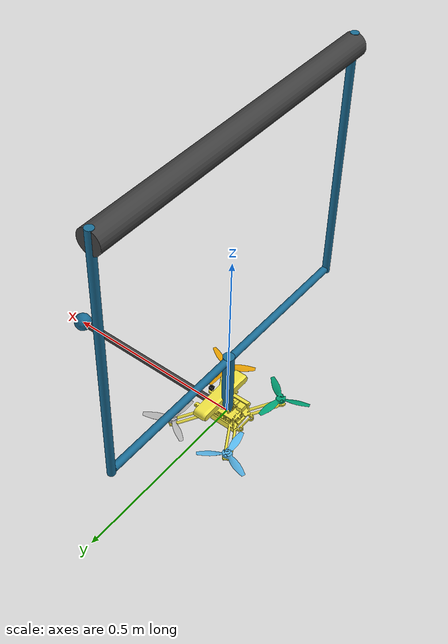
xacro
<?xml version="1.0"?>

<robot name="marvin" xmlns:xacro="http://www.ros.org/wiki/xacro">

    <!-- PROPERTIES -->

    <xacro:property name="M_PI" value="3.1415926535897931"/>

    <xacro:arg name="sensor_update_rate" default="25.0"/>
    <xacro:arg name="controller_update_rate" default="50.0"/>
	<xacro:property name="sensor_update_rate" value="$(arg sensor_update_rate)"/>
	<xacro:property name="controller_update_rate" value="$(arg controller_update_rate)"/>

    <!-- MATERIALS -->

    <material name="DarkGrey">
        <color rgba="0.25 0.25 0.25 1.0"/>
    </material>
    <material name="OA">
        <color rgba="0.101960784 0.42745098 0.588235294 1.0"/>
    </material>

    <!-- PLUGINS -->

	<!-- Cameras -->
    <xacro:include filename="$(find wai_marvin_gazebo)/descriptions/generic_camera.xacro"/>
    <xacro:generic_camera name="camera_front" parent="link_base" update_rate="${sensor_update_rate}" res_x="960" res_y="720" image_format="R8G8B8" hfov="${90*M_PI/180}">
      <origin xyz="0.05 0.0 0.05" rpy="0.0 0.0 0.0"/>
    </xacro:generic_camera><!-- P=0.261791667 Pitch with 15deg -->

	<!-- Gazebo sensor plugins -->
	<gazebo>
		<plugin name="gazebo_ros_control" filename="libgazebo_ros_control.so">
		</plugin>

		<plugin name="quadrotor_imu_sim" filename="libhector_gazebo_ros_imu.so">
		    <alwaysOn>true</alwaysOn>
		    <updateRate>${sensor_update_rate}</updateRate>
		    <bodyName>marvin::link_base</bodyName>
		    <frameId>marvin/link_base</frameId>
		    <topicName>imu</topicName>
            <xyzOffset>0.0 0.0 0.0</xyzOffset>
            <rpyOffset>0.0 0.0 0.0</rpyOffset>
		    <gaussianNoise>0.05</gaussianNoise>
		    <accelDrift>0.001 0.001 0.001</accelDrift>
		</plugin>

		<plugin name="quadrotor_groundtruth_sim" filename="libgazebo_ros_p3d.so">
		    <!-- Takes a BODY NAME body::link and publishes an ODOM-Topic only, parent frame is world -->
		    <!-- COMBINE WITH static_transform_publisher AND ground_truth_to_tf IN THE GAZEBO_SPAWN.launch FILE-->
			<alwaysOn>true</alwaysOn>
			<updateRate>${sensor_update_rate}</updateRate>
			<bodyName>marvin::link_base</bodyName>
			<topicName>odom</topicName>
			<gaussianNoise>0.0</gaussianNoise>
			<frameName>world</frameName>
		</plugin>
	</gazebo>

	<!-- Gazebo controller plugins -->
	<gazebo>
        <plugin name="quadrotor_simple_controller" filename="libhector_gazebo_quadrotor_simple_controller.so">
            <topicName>cmd_vel</topicName>
            <imuTopic>imu</imuTopic>
            <stateTopic>odom</stateTopic>
            <landingtakeoffSpeed>0.125</landingtakeoffSpeed>
            <landingtakeoffHeight>0.5</landingtakeoffHeight>
            <maxForce>30.0</maxForce>
            <bodyName>marvin::link_base</bodyName>
            <rollpitchProportionalGain>10.0</rollpitchProportionalGain>
            <rollpitchDifferentialGain>5.0</rollpitchDifferentialGain>
            <rollpitchIntegralGain>0.0</rollpitchIntegralGain>
            <rollpitchLimit>0.5</rollpitchLimit>
            <yawProportionalGain>1.0</yawProportionalGain>
            <yawDifferentialGain>1.0</yawDifferentialGain>
            <yawIntegralGain>0.0</yawIntegralGain>
            <yawLimit>3.1415</yawLimit>
            <velocityXYProportionalGain>7.5</velocityXYProportionalGain>
            <velocityXYDifferentialGain>2.0</velocityXYDifferentialGain>
            <velocityXYIntegralGain>0.0</velocityXYIntegralGain>
            <velocityXYLimit>2.0</velocityXYLimit>
            <velocityZProportionalGain>5.0</velocityZProportionalGain>
            <velocityZDifferentialGain>1.0</velocityZDifferentialGain>
            <velocityZIntegralGain>0.0</velocityZIntegralGain>
            <velocityZLimit>0.5</velocityZLimit>
        </plugin>
    </gazebo>

	<!-- === LINKS === -->

	<link name="link_base">
        <pose>0.0 0.0 0.0 0.0 0.0 0.0</pose>
		<visual>
			<geometry>
			<cylinder length="0.2" radius="0.015"/>
			</geometry>
			<origin xyz="0.0 0.0 0.1" rpy="0.0 0.0 0.0"/>
            <material name="OA"/>
		</visual>
        <visual>
			<geometry>
			<cylinder length="0.825" radius="0.01"/>
			</geometry>
			<origin xyz="0.0 0.0 0.19" rpy="1.570796327 0.0 0.0"/>
            <material name="OA"/>
		</visual>
        <visual>
			<geometry>
			<cylinder length="0.7" radius="0.01"/>
			</geometry>
			<origin xyz="0.0 0.42 0.53" rpy="0.0 0.0 0.0"/>
            <material name="OA"/>
		</visual>
        <visual>
			<geometry>
			<cylinder length="0.7" radius="0.01"/>
			</geometry>
			<origin xyz="0.0 -0.42 0.53" rpy="0.0 0.0 0.0"/>
            <material name="OA"/>
		</visual>
        <visual>
			<geometry>
			<cylinder length="0.85" radius="0.03"/>
			</geometry>
			<origin xyz="0.0 0.0 0.85" rpy="1.570796327 0.0 0.0"/>
            <material name="DarkGrey"/>
		</visual>
		<inertial>
			<mass value="0.5"/>
			<origin xyz="0.0 0.0 0.0" rpy="0.0 0.0 0.0"/>
			<inertia ixx="1.0" ixy="0.0" ixz="0.0" iyy="1.0" iyz="0.0" izz="1.0"/>
		</inertial>
	</link>

    <link name="link_marvin_body">
		<visual>
			<origin xyz="0.0 0.0 -0.01" rpy="0.0 0.0 0.0"/>
			<geometry>
				<mesh filename="package://wai_marvin_gazebo/resources/marvin/link_marvin_body.dae"/>
			</geometry>
		</visual>
		<inertial>
			<mass value="0.5"/>
			<origin xyz="0.0 0.0 0.0" rpy="0.0 0.0 0.0"/>
			<inertia ixx="1.0" ixy="0.0" ixz="0.0" iyy="1.0" iyz="0.0" izz="1.0"/>
		</inertial>
		<collision>
			<origin xyz="0.0 0.0 0.0" rpy="0.0 0.0 0.0"/>
			<geometry>
                <box size="0.25 0.25 0.1"/>
			</geometry>
		</collision>
    </link>
    <link name="link_marvin_hook_roll">
		<inertial>
			<mass value="0.001"/>
			<origin xyz="0.0 0.0 0.0" rpy="0.0 0.0 0.0"/>
			<inertia ixx="0.000001" ixy="0.0" ixz="0.0" iyy="0.000001" iyz="0.0" izz="0.000001"/>
		</inertial>
    </link>
    <link name="link_marvin_hook_pitch">
		<inertial>
			<mass value="0.001"/>
			<origin xyz="0.0 0.0 0.0" rpy="0.0 0.0 0.0"/>
			<inertia ixx="0.000001" ixy="0.0" ixz="0.0" iyy="0.000001" iyz="0.0" izz="0.000001"/>
		</inertial>
    </link>
    <link name="link_marvin_hook_gripper">
		<visual>
			<origin xyz="-0.25 0.0 0.0" rpy="0.0 1.570796327 0.0"/>
			<geometry>
				<cylinder length="0.5" radius="0.01"/>
			</geometry>
            <material name="DarkGrey"/>
		</visual>
		<visual>
			<origin xyz="0.0 0.0 0.0" rpy="0.0 0.0 0.0"/>
			<geometry>
				<sphere radius="0.025"/>
			</geometry>
            <material name="OA"/>
		</visual>
		<inertial>
			<mass value="0.01"/>
			<origin xyz="0.0 0.0 0.0" rpy="0.0 0.0 0.0"/>
			<inertia ixx="0.0000025" ixy="0.0" ixz="0.0" iyy="0.0000025" iyz="0.0" izz="0.0000025"/>
		</inertial>
    </link>

    <!-- FRONT -->
    <link name="link_marvin_rotor_front_left">
	    <inertial>
	      <mass value="0.01"/>
	      <origin xyz="0.0 0.0 0.0" rpy="0.0 0.0 0.0"/>
	      <inertia ixx="0.000025" ixy="0.0" ixz="0.0" iyx="0.0" iyy="0.000025" iyz="0.0" izx="0.0" izy="0.0" izz="0.00005"/>
	    </inertial>
	    <visual name="link_marvin_rotor_front_left_visual">
	      <origin xyz="0.0 0.0 0.0" rpy="0.0 0.0 0.0"/>
	      <geometry>
		    <mesh filename="package://wai_marvin_gazebo/resources/marvin/link_marvin_rotor_front_left.dae"/>
	      </geometry>
	    </visual>
    </link>
    <link name="link_marvin_rotor_front_right">
	    <inertial>
	      <mass value="0.01"/>
	      <origin xyz="0.0 0.0 0.0" rpy="0.0 0.0 0.0"/>
	      <inertia ixx="0.000025" ixy="0.0" ixz="0.0" iyx="0.0" iyy="0.000025" iyz="0.0" izx="0.0" izy="0.0" izz="0.00005"/>
	    </inertial>
	    <visual name="link_marvin_rotor_front_right_visual">
	      <origin xyz="0.0 0.0 0.0" rpy="0.0 0.0 0.0"/>
	      <geometry>
		    <mesh filename="package://wai_marvin_gazebo/resources/marvin/link_marvin_rotor_front_right.dae"/>
	      </geometry>
	    </visual>
    </link>

    <!-- BACK -->
    <link name="link_marvin_rotor_rear_left">
	    <inertial>
	      <mass value="0.01"/>
	      <origin xyz="0.0 0.0 0.0" rpy="0.0 0.0 0.0"/>
	      <inertia ixx="0.000025" ixy="0.0" ixz="0.0" iyx="0.0" iyy="0.000025" iyz="0.0" izx="0.0" izy="0.0" izz="0.00005"/>
	    </inertial>
	    <visual name="link_marvin_rotor_rear_left_visual">
	      <origin xyz="0.0 0.0 0.0" rpy="0.0 0.0 0.0"/>
	      <geometry>
		    <mesh filename="package://wai_marvin_gazebo/resources/marvin/link_marvin_rotor_rear_left.dae"/>
	      </geometry>
	    </visual>
    </link>

    <link name="link_marvin_rotor_rear_right">
	    <inertial>
	      <mass value="0.01"/>
	      <origin xyz="0.0 0.0 0.0" rpy="0.0 0.0 0.0"/>
	      <inertia ixx="0.000025" ixy="0.0" ixz="0.0" iyx="0.0" iyy="0.000025" iyz="0.0" izx="0.0" izy="0.0" izz="0.00005"/>
	    </inertial>
	    <visual name="link_marvin_rotor_rear_right_visual">
	      <origin xyz="0.0 0.0 0.0" rpy="0.0 0.0 0.0"/>
	      <geometry>
		    <mesh filename="package://wai_marvin_gazebo/resources/marvin/link_marvin_rotor_rear_right.dae"/>
	      </geometry>
	    </visual>
    </link>

	<!-- === JOINTS === -->

	<joint name="joint_marvin_body" type="fixed">
        <parent link="link_base"/>
        <child link="link_marvin_body"/>
        <origin xyz="0.0 0.0 0.0" rpy="0.0 0.0 0.0"/>
        <axis xyz="0 0 1"/>
	</joint>

	<joint name="joint_marvin_hook_roll" type="revolute">
        <parent link="link_marvin_body"/>
        <child link="link_marvin_hook_roll"/>
        <origin xyz="0.0 0.0 0.0" rpy="0.0 0.0 0.0"/>
        <axis xyz="1 0 0"/>
		<limit lower="-3.2" upper="3.2" effort="100" velocity="100"/>
		<dynamics damping="0.0" friction="0.005"/>
	</joint>
	<joint name="joint_marvin_hook_pitch" type="revolute">
        <parent link="link_marvin_hook_roll"/>
        <child link="link_marvin_hook_pitch"/>
        <origin xyz="0.0 0.0 0.0" rpy="0.0 0.0 0.0"/>
        <axis xyz="0 1 0"/>
		<limit lower="-3.2" upper="3.2" effort="100" velocity="100"/>
		<dynamics damping="0.0" friction="0.005"/>
	</joint>
	<joint name="joint_marvin_hook_gripper" type="revolute">
        <parent link="link_marvin_hook_pitch"/>
        <child link="link_marvin_hook_gripper"/>
        <origin xyz="0.5 0.0 0.0" rpy="0.0 0.0 0.0"/>
        <axis xyz="0 0 1"/>
		<limit lower="0.0" upper="0.0" effort="1000" velocity="1000"/>
		<dynamics damping="0.0" friction="0.0"/>
	</joint>

	<joint name="joint_marvin_rotor_front_left" type="continuous">
		<axis xyz="0 0 1" />
		<origin xyz="0.0873 0.1115 0.0" rpy="0.0 0.0 0.0"/>
		<parent link="link_marvin_body"/>
		<child link="link_marvin_rotor_front_left"/>
		<limit effort="100.0" velocity="100.0"/>
		<dynamics damping="0.0" friction="0.0"/>
	</joint>

	<joint name="joint_marvin_rotor_front_right" type="continuous">
		<axis xyz="0 0 1" />
		<origin xyz="0.0873 -0.1115 0.0" rpy="0.0 0.0 0.0"/>
		<parent link="link_marvin_body"/>
		<child link="link_marvin_rotor_front_right"/>
        <mimic joint="joint_marvin_rotor_front_left" multiplier="1.0" offset="0.0"/>
	</joint>

	<joint name="joint_marvin_rotor_rear_left" type="continuous">
		<axis xyz="0 0 1" />
		<origin xyz="-0.0873 0.1115 0.0" rpy="0.0 0.0 0.0"/>
		<parent link="link_marvin_body"/>
		<child link="link_marvin_rotor_rear_left"/>
        <mimic joint="joint_marvin_rotor_front_left" multiplier="1.0" offset="0.0"/>
	</joint>

	<joint name="joint_marvin_rotor_rear_right" type="continuous">
		<axis xyz="0 0 1" />
		<origin xyz="-0.0873 -0.1115 0.0" rpy="0.0 0.0 0.0"/>
		<parent link="link_marvin_body"/>
		<child link="link_marvin_rotor_rear_right"/>
        <mimic joint="joint_marvin_rotor_front_left" multiplier="1.0" offset="0.0"/>
	</joint>

	<!-- === CONTROLLER TRANSMISSIONS === -->

	<transmission name="trans_marvin_rotor_front_left">
		<type>transmission_interface/SimpleTransmission</type>
		<joint name="joint_marvin_rotor_front_left">
		  <hardwareInterface>hardware_interface/EffortJointInterface</hardwareInterface>
		</joint>
		<actuator name="motor_marvin_rotor_front_left">
		  <hardwareInterface>hardware_interface/EffortJointInterface</hardwareInterface>
		  <mechanicalReduction>1</mechanicalReduction>
		</actuator>
	</transmission>

	<transmission name="trans_marvin_hook_roll">
		<type>transmission_interface/SimpleTransmission</type>
		<joint name="joint_marvin_hook_roll">
		  <hardwareInterface>hardware_interface/EffortJointInterface</hardwareInterface>
		</joint>
		<actuator name="actuator_marvin_hook_roll">
		  <hardwareInterface>hardware_interface/EffortJointInterface</hardwareInterface>
		  <mechanicalReduction>1</mechanicalReduction>
		</actuator>
	</transmission>

	<transmission name="trans_marvin_hook_pitch">
		<type>transmission_interface/SimpleTransmission</type>
		<joint name="joint_marvin_hook_pitch">
		  <hardwareInterface>hardware_interface/EffortJointInterface</hardwareInterface>
		</joint>
		<actuator name="actuator_marvin_hook_pitch">
		  <hardwareInterface>hardware_interface/EffortJointInterface</hardwareInterface>
		  <mechanicalReduction>1</mechanicalReduction>
		</actuator>
	</transmission>

	<transmission name="trans_marvin_hook_gripper">
		<type>transmission_interface/SimpleTransmission</type>
		<joint name="joint_marvin_hook_gripper">
		  <hardwareInterface>hardware_interface/EffortJointInterface</hardwareInterface>
		</joint>
		<actuator name="actuator_marvin_hook_gripper">
		  <hardwareInterface>hardware_interface/EffortJointInterface</hardwareInterface>
		  <mechanicalReduction>1</mechanicalReduction>
		</actuator>
	</transmission>

</robot>

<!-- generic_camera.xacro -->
<robot xmlns:xacro="http://www.ros.org/wiki/xacro">

    <xacro:property name="M_PI" value="3.1415926535897931" />

    <xacro:macro name="generic_camera" params="name parent *origin update_rate res_x res_y image_format hfov">

		<link name="link_${name}">
			<visual>
				<origin xyz="0 0 0" rpy="0 0 0" />
				<geometry>
				<box size="0.01 0.01 0.01" />
				</geometry>
				<material name="Black">
				<color rgba="0.0 0.0 0.0 1.0"/>
				</material>
			</visual>
			<inertial>
			  <mass value="0.001" />
			  <origin xyz="0 0 0" rpy="0 0 0" />
			  <inertia ixx="0.0001" ixy="0" ixz="0" iyy="0.0001" iyz="0" izz="0.0001" />
			</inertial>
		</link>
		<link name="link_${name}_optical_frame">
			<visual>
				<origin xyz="0 0 0" rpy="0 0 0"/>
				<geometry>
					<box size="0.001 0.001 0.001" />
				</geometry>
			</visual>
			<inertial>
				<mass value="0.0" />
				<origin xyz="0 0 0" />
				<inertia ixx="0.0" ixy="0.0" ixz="0.0" iyy="0.0" iyz="0.0" izz="0.0" />
			</inertial>
		</link>

		<joint name="joint_${name}" type="fixed">
			<xacro:insert_block name="origin" />
			<parent link="${parent}"/>
			<child link="link_${name}"/>
		</joint>
		<joint name="joint_${name}_optical_frame" type="fixed">
			<origin xyz="0 0 0" rpy="${-M_PI/2} 0.0 ${-M_PI/2}" />
			<parent link="link_${name}" />
			<child link="link_${name}_optical_frame"/>
		</joint>

		<gazebo reference="link_${name}">
			<sensor type="camera" name="${name}cam">
				<update_rate>${update_rate}</update_rate>
				<camera>
					<horizontal_fov>${hfov}</horizontal_fov>
					<image>
						<width>${res_x}</width>
						<height>${res_y}</height>
						<format>${image_format}</format>
					</image>
					<clip>
						<near>0.01</near>
						<far>100</far>
					</clip>
				</camera>
				<plugin name="${name}_camera_controller" filename="libgazebo_ros_camera.so">
					<cameraName>${name}</cameraName>
					<alwaysOn>true</alwaysOn>
					<updateRate>${update_rate}</updateRate>
					<imageTopicName>image_raw</imageTopicName>
					<cameraInfoTopicName>camera_info</cameraInfoTopicName>
					<frameName>link_${name}_optical_frame</frameName>
				</plugin>
			</sensor>
			<material>Gazebo/Black</material>
		</gazebo>

    </xacro:macro>

</robot>
